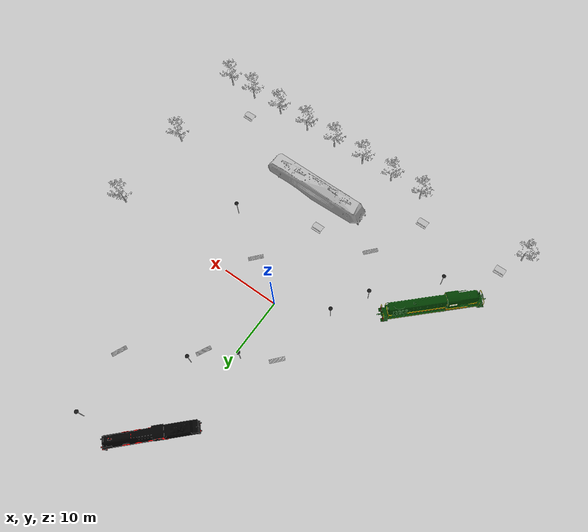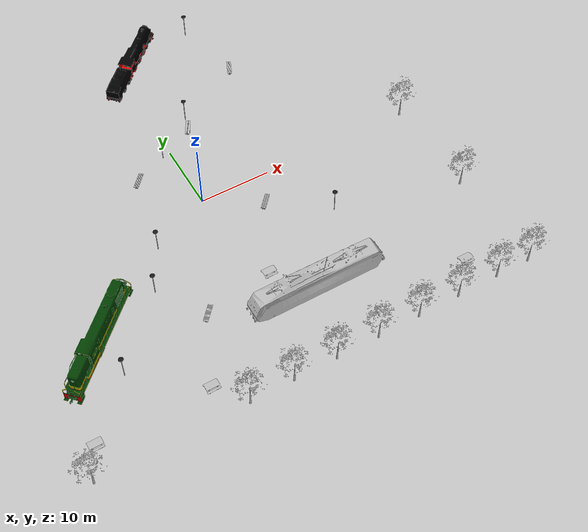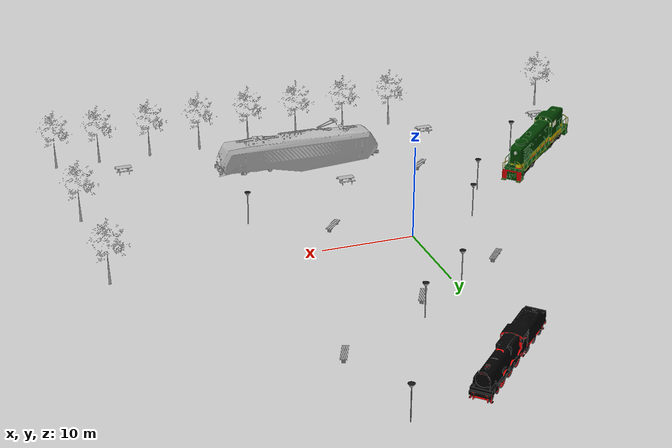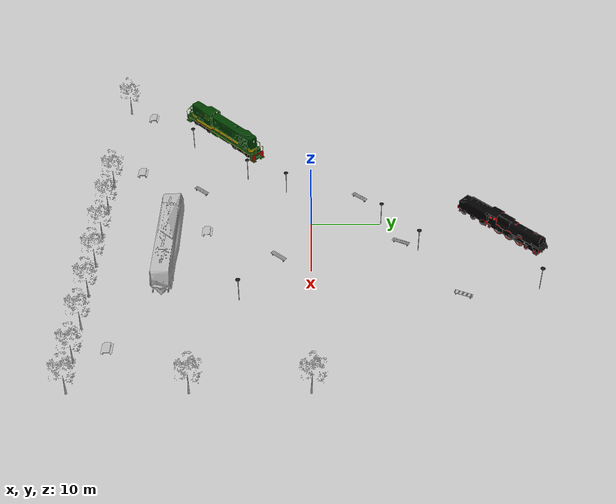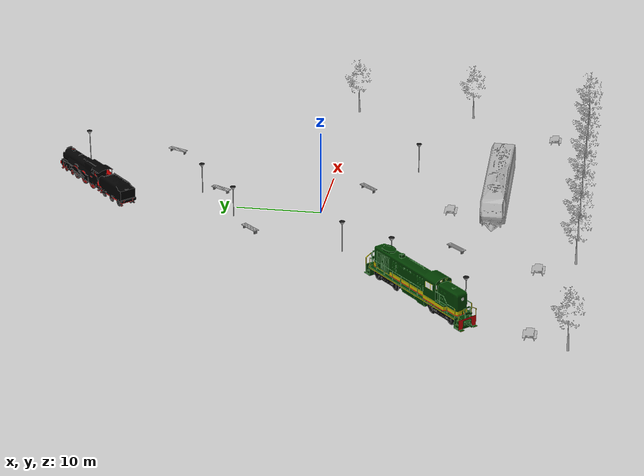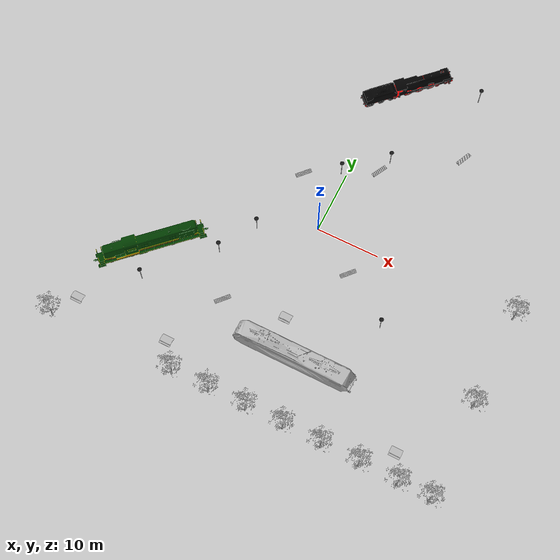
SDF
<sdf version="1.6">
 <world name="urjc_trains_world">
  <physics name="5ms" type="ignored">
   <max_step_size>0.01</max_step_size>
   <real_time_factor>1.0</real_time_factor>
  </physics>
  <plugin filename="gz-sim-physics-system" name="gz::sim::systems::Physics"/>
  <plugin filename="gz-sim-user-commands-system" name="gz::sim::systems::UserCommands"/>
  <plugin filename="gz-sim-scene-broadcaster-system" name="gz::sim::systems::SceneBroadcaster"/>
  <plugin filename="gz-sim-sensors-system" name="gz::sim::systems::Sensors">
   <render_engine>ogre2</render_engine>
  </plugin>
  <plugin filename="gz-sim-imu-system" name="gz::sim::systems::Imu"/>
  <plugin filename="gz-sim-navsat-system" name="gz::sim::systems::NavSat"/>
  <spherical_coordinates>
   <surface_model>EARTH_WGS84</surface_model>
   <world_frame_orientation>ENU</world_frame_orientation>
   <latitude_deg>40.284671</latitude_deg>
   <longitude_deg>-3.820158</longitude_deg>
   <elevation>679</elevation>
   <heading_deg>0</heading_deg>
  </spherical_coordinates>
  <gravity>0.0 0.0 -9.8</gravity>
  <scene>
   <ambient>0.4 0.4 0.4 1</ambient>
   <background>0.7 0.7 0.7 1</background>
   <shadows>false</shadows>
   <grid>false</grid>
   <origin_visual>false</origin_visual>
  </scene>
  <light name="sun" type="directional">
   <cast_shadows>0</cast_shadows>
   <pose>0 0 10000 0 0 0</pose>
   <diffuse>0.8 0.8 0.8 1</diffuse>
   <specular>0.2 0.2 0.2 1</specular>
   <attenuation>
    <range>1000</range>
    <constant>0.9</constant>
    <linear>0.01</linear>
    <quadratic>0.001</quadratic>
   </attenuation>
   <direction>-0.5 0.1 -0.9</direction>
  </light>
  <include><uri>model://urjc_trains_ground_plane</uri></include>
  <include><uri>model://train_a</uri><pose>2.16 27.35 0.48 0 0 -2.36</pose></include>
  <include><uri>model://train_b</uri><pose>6 -20.15 0.48 0 0 1.57</pose></include>
  <include><uri>model://train_c</uri><pose>-21.1 -13.9 0.48 0 0 2.34</pose></include>
  <model name="picnic_table">
   <include><uri>model://picnic_table</uri><pose>2 -15 0 0 0 0</pose></include>
  </model>
  <model name="picnic_table_1">
   <include><uri>model://picnic_table</uri><pose>25 -26 0 0 0 0</pose></include>
  </model>
  <model name="picnic_table_2">
   <include><uri>model://picnic_table</uri><pose>-12 -26 0 0 0 0</pose></include>
  </model>
  <model name="picnic_table_3">
   <include><uri>model://picnic_table</uri><pose>-27 -26 0 0 0 0</pose></include>
  </model>
  <model name="little_bench_1">
   <include><uri>model://little_bench</uri><pose>-7.72 -17.31 0.67 0 0 0.84</pose></include>
  </model>
  <model name="little_bench_2">
   <include><uri>model://little_bench</uri><pose>7.18 -5.32 0.67 0 0 0.84</pose></include>
  </model>
  <model name="little_bench_3">
   <include><uri>model://little_bench</uri><pose>-6 8 0.67 0 0 -2.3</pose></include>
  </model>
  <model name="little_bench_4">
   <include><uri>model://little_bench</uri><pose>15.22 19.8 0.67 0 0 1.15</pose></include>
  </model>
  <model name="little_bench_5">
   <include><uri>model://little_bench</uri><pose>4.11 13.51 0.67 0 0 -2.05</pose></include>
  </model>
  <model name="street_lamp_1">
   <include><uri>model://street_lamp</uri><pose>-20.2 -18 0.0 0 0 0.0</pose></include>
  </model>
  <model name="street_lamp_2">
   <include><uri>model://street_lamp</uri><pose>-11.8 -9 0.0 0 0 0.0</pose></include>
  </model>
  <model name="street_lamp_3">
   <include><uri>model://street_lamp</uri><pose>-8.5 -3 0.0 0 0 0.0</pose></include>
  </model>
  <model name="street_lamp_4">
   <include><uri>model://street_lamp</uri><pose>-1 11 0.0 0 0 0.0</pose></include>
  </model>
  <model name="street_lamp_5">
   <include><uri>model://street_lamp</uri><pose>5 16 0.0 0 0 0.0</pose></include>
  </model>
  <model name="street_lamp_6">
   <include><uri>model://street_lamp</uri><pose>13 32 0.0 0 0 0.0</pose></include>
  </model>
  <model name="street_lamp_7">
   <include><uri>model://street_lamp</uri><pose>15 -9 0.0 0 0 0.0</pose></include>
  </model>
  <model name="poplar_1"><include><uri>model://poplar</uri><pose>-29 -30 0 0 0 0</pose></include></model>
  <model name="poplar_2"><include><uri>model://poplar</uri><pose>-9 -30 0 0 0 0</pose></include></model>
  <model name="poplar_3"><include><uri>model://poplar</uri><pose>-3 -30 0 0 0 0</pose></include></model>
  <model name="poplar_4"><include><uri>model://poplar</uri><pose>3 -30 0 0 0 0</pose></include></model>
  <model name="poplar_5"><include><uri>model://poplar</uri><pose>9 -30 0 0 0 0</pose></include></model>
  <model name="poplar_6"><include><uri>model://poplar</uri><pose>15 -30 0 0 0 0</pose></include></model>
  <model name="poplar_7"><include><uri>model://poplar</uri><pose>21 -30 0 0 0 0</pose></include></model>
  <model name="poplar_8"><include><uri>model://poplar</uri><pose>27 -30 0 0 0 0</pose></include></model>
  <model name="poplar_9"><include><uri>model://poplar</uri><pose>32 -30 0 0 0 0</pose></include></model>
  <model name="poplar_10"><include><uri>model://poplar</uri><pose>32 -15 0 0 0 0</pose></include></model>
  <model name="poplar_11"><include><uri>model://poplar</uri><pose>32 0 0 0 0 0</pose></include></model>
 </world>
</sdf>

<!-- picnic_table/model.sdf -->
<sdf version="1.5">
  <model name="picnic_table">
    <static>true</static>
    <link name="picnic_table_link">
      <collision name="collision">
        <geometry>
          <mesh>
            <uri>model://picnic_table/meshes/picnic_table.stl</uri>
          </mesh>
        </geometry>
      </collision>
      <visual name="visual">
        <geometry>
          <mesh>
            <uri>model://picnic_table/meshes/picnic_table.dae</uri>
          </mesh>
        </geometry>
      </visual>
    </link>
  </model>
</sdf>

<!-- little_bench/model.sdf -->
<sdf version="1.5">
  <model name="little_bench">
    <static>true</static>
    <link name="little_bench_link">
      <collision name="collision">
        <geometry>
          <mesh>
            <uri>model://little_bench/meshes/little_bench.stl</uri>
          </mesh>
        </geometry>
      </collision>
      <visual name="visual">
        <geometry>
          <mesh>
            <uri>model://little_bench/meshes/little_bench.dae</uri>
          </mesh>
        </geometry>
      </visual>
    </link>
  </model>
</sdf>

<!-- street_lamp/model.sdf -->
<sdf version="1.5">
  <model name="street_lamp">
    <static>true</static>
    <link name="street_lamp_link">
      <collision name="collision">
        <geometry>
          <mesh>
            <uri>model://street_lamp/meshes/street_lamp.stl</uri>
          </mesh>
        </geometry>
      </collision>
      <visual name="visual">
        <geometry>
          <mesh>
            <uri>model://street_lamp/meshes/street_lamp.dae</uri>
          </mesh>
        </geometry>
      </visual>
    </link>
  </model>
</sdf>

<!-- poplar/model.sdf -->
<sdf version="1.5">
  <model name="poplar">
    <static>true</static>
    <link name="poplar_link">
      <collision name="collision">
        <geometry>
          <mesh optimization="convex_hull">
            <uri>model://poplar/meshes/poplar.stl</uri>
          </mesh>
        </geometry>
      </collision>
      <visual name="visual">
        <geometry>
          <mesh>
            <uri>model://poplar/meshes/poplar.dae</uri>
          </mesh>
        </geometry>
      </visual>
    </link>
  </model>
</sdf>

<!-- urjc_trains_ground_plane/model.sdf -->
<sdf version="1.5">
  <model name="urjc_trains_ground_plane">
    <static>true</static>
    <link name="link">
      <collision name="collision">
        <geometry>
          <box>
            <size>100 100 0.02</size>
          </box>
        </geometry>
        <surface>
          <friction>
            <ode>
              <mu>0.7</mu>
              <mu2>0.7</mu2>
              <fdir1>0.000000 0.000000 1.000000</fdir1>
              <slip1>0.00150</slip1>
              <slip2>0.00150</slip2>
            </ode>
          </friction>
        </surface>
      </collision>
    </link>
  </model>
</sdf>

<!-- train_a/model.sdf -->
<sdf version="1.5">
  <model name="train_a">
    <static>true</static>
    <link name="train_a_link">
      <collision name="collision">
        <geometry>
          <mesh optimization="convex_hull">
            <uri>model://train_a/meshes/train_a.stl</uri>
          </mesh>
        </geometry>
      </collision>
      <visual name="visual">
        <geometry>
          <mesh>
            <uri>model://train_a/meshes/train_a.dae</uri>
          </mesh>
        </geometry>
      </visual>
    </link>
  </model>
</sdf>

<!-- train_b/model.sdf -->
<sdf version="1.5">
  <model name="train_b">
    <static>true</static>
    <link name="train_b_link">
      <collision name="collision">
        <geometry>
          <mesh optimization="convex_hull">
            <uri>model://train_b/meshes/train_b.stl</uri>
          </mesh>
        </geometry>
      </collision>
      <visual name="visual">
        <geometry>
          <mesh>
            <uri>model://train_b/meshes/train_b.dae</uri>
          </mesh>
        </geometry>
      </visual>
    </link>
  </model>
</sdf>

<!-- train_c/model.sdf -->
<sdf version="1.5">
  <model name="train_c">
    <static>true</static>
    <link name="train_c_link">
      <collision name="collision">
        <geometry>
          <mesh optimization="convex_hull">
            <uri>model://train_c/meshes/train_c.stl</uri>
          </mesh>
        </geometry>
      </collision>
      <visual name="visual">
        <geometry>
          <mesh>
            <uri>model://train_c/meshes/train_c.dae</uri>
          </mesh>
        </geometry>
      </visual>
    </link>
  </model>
</sdf>
